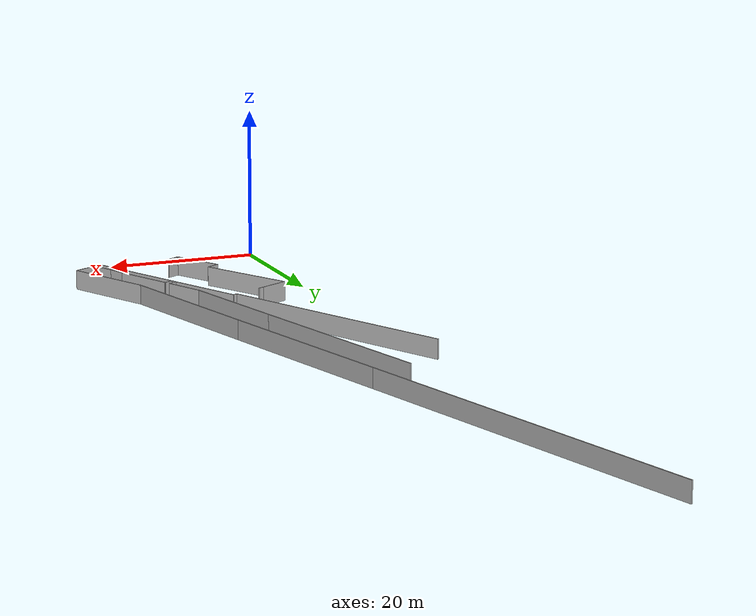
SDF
<?xml version="1.0" ?>
<sdf version="1.6">
  <model name="sps_0401">
    <pose frame="">0 0 0 0 -0 0</pose>
    <static>1</static>
    <self_collide>0</self_collide>
    <allow_auto_disable>0</allow_auto_disable>
    <link name="Wall89">
      <kinematic>0</kinematic>
      <gravity>1</gravity>
      <self_collide>0</self_collide>
      <collision name="collision">
        <geometry>
          <box>
            <size>26.7984 0.15 2.5</size>
          </box>
        </geometry>
        <pose frame="">0 0 0 0 -0 0</pose>
      </collision>
      <visual name="visual">
        <geometry>
          <box>
            <size>26.7984 0.15 2.5</size>
          </box>
        </geometry>
        <pose frame="">0 0 0 0 -0 0</pose>
        <cast_shadows>1</cast_shadows>
        <transparency>0.0</transparency>
      </visual>
      <pose frame="">13.3971 54.9457 1.25 0 -0 1.83122</pose>
    </link>
    <link name="Wall90">
      <kinematic>0</kinematic>
      <gravity>1</gravity>
      <self_collide>0</self_collide>
      <collision name="collision">
        <geometry>
          <box>
            <size>51.7448 0.15 2.5</size>
          </box>
        </geometry>
        <pose frame="">0 0 0 0 -0 0</pose>
      </collision>
      <visual name="visual">
        <geometry>
          <box>
            <size>51.7448 0.15 2.5</size>
          </box>
        </geometry>
        <pose frame="">0 0 0 0 -0 0</pose>
        <cast_shadows>1</cast_shadows>
        <transparency>0.0</transparency>
      </visual>
      <pose frame="">3.28492 92.8931 1.25 0 -0 1.83122</pose>
    </link>
    <link name="Wall495">
      <kinematic>0</kinematic>
      <gravity>1</gravity>
      <self_collide>0</self_collide>
      <collision name="collision">
        <geometry>
          <box>
            <size>27.9987 0.15 2.5</size>
          </box>
        </geometry>
        <pose frame="">0 0 0 0 -0 0</pose>
      </collision>
      <visual name="visual">
        <geometry>
          <box>
            <size>27.9987 0.15 2.5</size>
          </box>
        </geometry>
        <pose frame="">0 0 0 0 -0 0</pose>
        <cast_shadows>1</cast_shadows>
        <transparency>0.0</transparency>
      </visual>
      <pose frame="">8.89472 54.3658 1.25 0 -0 1.83122</pose>
    </link>
    <link name="Wall1098">
      <kinematic>0</kinematic>
      <gravity>1</gravity>
      <self_collide>0</self_collide>
      <collision name="collision">
        <geometry>
          <box>
            <size>1.8 0.15 2.5</size>
          </box>
        </geometry>
        <pose frame="">0 0 0 0 -0 0</pose>
      </collision>
      <visual name="visual">
        <geometry>
          <box>
            <size>1.8 0.15 2.5</size>
          </box>
        </geometry>
        <pose frame="">0 0 0 0 -0 0</pose>
        <cast_shadows>1</cast_shadows>
        <transparency>0.0</transparency>
      </visual>
      <pose frame="">13.7952 7.87309 1.25 0 0 -2.62645</pose>
    </link>
    <link name="Wall1099">
      <kinematic>0</kinematic>
      <gravity>1</gravity>
      <self_collide>0</self_collide>
      <collision name="collision">
        <geometry>
          <box>
            <size>7.00014 0.15 2.5</size>
          </box>
        </geometry>
        <pose frame="">0 0 0 0 -0 0</pose>
      </collision>
      <visual name="visual">
        <geometry>
          <box>
            <size>7.00014 0.15 2.5</size>
          </box>
        </geometry>
        <pose frame="">0 0 0 0 -0 0</pose>
        <cast_shadows>1</cast_shadows>
        <transparency>0.0</transparency>
      </visual>
      <pose frame="">11.2877 10.4755 1.25 0 -0 2.08596</pose>
    </link>
    <link name="Wall1100">
      <kinematic>0</kinematic>
      <gravity>1</gravity>
      <self_collide>0</self_collide>
      <collision name="collision">
        <geometry>
          <box>
            <size>1.80131 0.15 2.5</size>
          </box>
        </geometry>
        <pose frame="">0 0 0 0 -0 0</pose>
      </collision>
      <visual name="visual">
        <geometry>
          <box>
            <size>1.80131 0.15 2.5</size>
          </box>
        </geometry>
        <pose frame="">0 0 0 0 -0 0</pose>
        <cast_shadows>1</cast_shadows>
        <transparency>0.0</transparency>
      </visual>
      <pose frame="">10.3472 13.9648 1.25 0 -0 0.514842</pose>
    </link>
    <link name="Wall1101">
      <kinematic>0</kinematic>
      <gravity>1</gravity>
      <self_collide>0</self_collide>
      <collision name="collision">
        <geometry>
          <box>
            <size>12.9596 0.15 2.5</size>
          </box>
        </geometry>
        <pose frame="">0 0 0 0 -0 0</pose>
      </collision>
      <visual name="visual">
        <geometry>
          <box>
            <size>12.9596 0.15 2.5</size>
          </box>
        </geometry>
        <pose frame="">0 0 0 0 -0 0</pose>
        <cast_shadows>1</cast_shadows>
        <transparency>0.0</transparency>
      </visual>
      <pose frame="">7.93886 20.0472 1.25 0 -0 2.08592</pose>
    </link>
    <link name="Wall1102">
      <kinematic>0</kinematic>
      <gravity>1</gravity>
      <self_collide>0</self_collide>
      <collision name="collision">
        <geometry>
          <box>
            <size>4.00494 0.15 2.5</size>
          </box>
        </geometry>
        <pose frame="">0 0 0 0 -0 0</pose>
      </collision>
      <visual name="visual">
        <geometry>
          <box>
            <size>4.00494 0.15 2.5</size>
          </box>
        </geometry>
        <pose frame="">0 0 0 0 -0 0</pose>
        <cast_shadows>1</cast_shadows>
        <transparency>0.0</transparency>
      </visual>
      <pose frame="">6.53695 26.5832 1.25 0 -0 0.46452</pose>
    </link>
    <link name="Wall1103">
      <kinematic>0</kinematic>
      <gravity>1</gravity>
      <self_collide>0</self_collide>
      <collision name="collision">
        <geometry>
          <box>
            <size>0.753663 0.15 2.5</size>
          </box>
        </geometry>
        <pose frame="">0 0 0 0 -0 0</pose>
      </collision>
      <visual name="visual">
        <geometry>
          <box>
            <size>0.753663 0.15 2.5</size>
          </box>
        </geometry>
        <pose frame="">0 0 0 0 -0 0</pose>
        <cast_shadows>1</cast_shadows>
        <transparency>0.0</transparency>
      </visual>
      <pose frame="">8.66415 27.6491 1.25 0 -0 0.464444</pose>
    </link>
    <link name="Wall1115">
      <kinematic>0</kinematic>
      <gravity>1</gravity>
      <self_collide>0</self_collide>
      <collision name="collision">
        <geometry>
          <box>
            <size>32.9903 0.15 2.5</size>
          </box>
        </geometry>
        <pose frame="">0 0 0 0 -0 0</pose>
      </collision>
      <visual name="visual">
        <geometry>
          <box>
            <size>32.9903 0.15 2.5</size>
          </box>
        </geometry>
        <pose frame="">0 0 0 0 -0 0</pose>
        <cast_shadows>1</cast_shadows>
        <transparency>0.0</transparency>
      </visual>
      <pose frame="">5.31347 44.3861 1.25 0 0 -1.1139</pose>
    </link>
    <link name="Wall1116">
      <kinematic>0</kinematic>
      <gravity>1</gravity>
      <self_collide>0</self_collide>
      <collision name="collision">
        <geometry>
          <box>
            <size>0.60945 0.15 2.5</size>
          </box>
        </geometry>
        <pose frame="">0 0 0 0 -0 0</pose>
      </collision>
      <visual name="visual">
        <geometry>
          <box>
            <size>0.60945 0.15 2.5</size>
          </box>
        </geometry>
        <pose frame="">0 0 0 0 -0 0</pose>
        <cast_shadows>1</cast_shadows>
        <transparency>0.0</transparency>
      </visual>
      <pose frame="">12.8641 29.7171 1.25 0 -0 0.455989</pose>
    </link>
    <link name="Wall1117">
      <kinematic>0</kinematic>
      <gravity>1</gravity>
      <self_collide>0</self_collide>
      <collision name="collision">
        <geometry>
          <box>
            <size>11.0076 0.15 2.5</size>
          </box>
        </geometry>
        <pose frame="">0 0 0 0 -0 0</pose>
      </collision>
      <visual name="visual">
        <geometry>
          <box>
            <size>11.0076 0.15 2.5</size>
          </box>
        </geometry>
        <pose frame="">0 0 0 0 -0 0</pose>
        <cast_shadows>1</cast_shadows>
        <transparency>0.0</transparency>
      </visual>
      <pose frame="">15.5651 24.9117 1.25 0 0 -1.11404</pose>
    </link>
    <link name="Wall1118">
      <kinematic>0</kinematic>
      <gravity>1</gravity>
      <self_collide>0</self_collide>
      <collision name="collision">
        <geometry>
          <box>
            <size>13.9614 0.15 2.5</size>
          </box>
        </geometry>
        <pose frame="">0 0 0 0 -0 0</pose>
      </collision>
      <visual name="visual">
        <geometry>
          <box>
            <size>13.9614 0.15 2.5</size>
          </box>
        </geometry>
        <pose frame="">0 0 0 0 -0 0</pose>
        <cast_shadows>1</cast_shadows>
        <transparency>0.0</transparency>
      </visual>
      <pose frame="">21.0687 13.7058 1.25 0 0 -1.11445</pose>
    </link>
    <link name="Wall1882">
      <kinematic>0</kinematic>
      <gravity>1</gravity>
      <self_collide>0</self_collide>
      <collision name="collision">
        <geometry>
          <box>
            <size>21.9845 0.15 2.5</size>
          </box>
        </geometry>
        <pose frame="">0 0 0 0 -0 0</pose>
      </collision>
      <visual name="visual">
        <geometry>
          <box>
            <size>21.9845 0.15 2.5</size>
          </box>
        </geometry>
        <pose frame="">0 0 0 0 -0 0</pose>
        <cast_shadows>1</cast_shadows>
        <transparency>0.0</transparency>
      </visual>
      <pose frame="">19.6295 31.364 1.25 0 0 -1.3149</pose>
    </link>
    <link name="Wall1883">
      <kinematic>0</kinematic>
      <gravity>1</gravity>
      <self_collide>0</self_collide>
      <collision name="collision">
        <geometry>
          <box>
            <size>12.0086 0.15 2.5</size>
          </box>
        </geometry>
        <pose frame="">0 0 0 0 -0 0</pose>
      </collision>
      <visual name="visual">
        <geometry>
          <box>
            <size>12.0086 0.15 2.5</size>
          </box>
        </geometry>
        <pose frame="">0 0 0 0 -0 0</pose>
        <cast_shadows>1</cast_shadows>
        <transparency>0.0</transparency>
      </visual>
      <pose frame="">25.0586 15.3403 1.25 0 0 -1.11428</pose>
    </link>
    <link name="Wall1884">
      <kinematic>0</kinematic>
      <gravity>1</gravity>
      <self_collide>0</self_collide>
      <collision name="collision">
        <geometry>
          <box>
            <size>3.25016 0.15 2.5</size>
          </box>
        </geometry>
        <pose frame="">0 0 0 0 -0 0</pose>
      </collision>
      <visual name="visual">
        <geometry>
          <box>
            <size>3.25016 0.15 2.5</size>
          </box>
        </geometry>
        <pose frame="">0 0 0 0 -0 0</pose>
        <cast_shadows>1</cast_shadows>
        <transparency>0.0</transparency>
      </visual>
      <pose frame="">26.247 9.23418 1.25 0 0 -2.68485</pose>
    </link>
    <link name="Wall1885">
      <kinematic>0</kinematic>
      <gravity>1</gravity>
      <self_collide>0</self_collide>
      <collision name="collision">
        <geometry>
          <box>
            <size>3.06222 0.15 2.5</size>
          </box>
        </geometry>
        <pose frame="">0 0 0 0 -0 0</pose>
      </collision>
      <visual name="visual">
        <geometry>
          <box>
            <size>3.06222 0.15 2.5</size>
          </box>
        </geometry>
        <pose frame="">0 0 0 0 -0 0</pose>
        <cast_shadows>1</cast_shadows>
        <transparency>0.0</transparency>
      </visual>
      <pose frame="">24.1113 9.89067 1.25 0 -0 2.02896</pose>
    </link>
    <link name="Wall1886">
      <kinematic>0</kinematic>
      <gravity>1</gravity>
      <self_collide>0</self_collide>
      <collision name="collision">
        <geometry>
          <box>
            <size>2.2882 0.15 2.5</size>
          </box>
        </geometry>
        <pose frame="">0 0 0 0 -0 0</pose>
      </collision>
      <visual name="visual">
        <geometry>
          <box>
            <size>2.2882 0.15 2.5</size>
          </box>
        </geometry>
        <pose frame="">0 0 0 0 -0 0</pose>
        <cast_shadows>1</cast_shadows>
        <transparency>0.0</transparency>
      </visual>
      <pose frame="">22.9969 12.3212 1.25 0 -0 1.96281</pose>
    </link>
    <link name="Wall1887">
      <kinematic>0</kinematic>
      <gravity>1</gravity>
      <self_collide>0</self_collide>
      <collision name="collision">
        <geometry>
          <box>
            <size>7.89212 0.15 2.5</size>
          </box>
        </geometry>
        <pose frame="">0 0 0 0 -0 0</pose>
      </collision>
      <visual name="visual">
        <geometry>
          <box>
            <size>7.89212 0.15 2.5</size>
          </box>
        </geometry>
        <pose frame="">0 0 0 0 -0 0</pose>
        <cast_shadows>1</cast_shadows>
        <transparency>0.0</transparency>
      </visual>
      <pose frame="">20.8224 16.9215 1.25 0 -0 2.02671</pose>
    </link>
    <link name="Wall1888">
      <kinematic>0</kinematic>
      <gravity>1</gravity>
      <self_collide>0</self_collide>
      <collision name="collision">
        <geometry>
          <box>
            <size>1.20028 0.15 2.5</size>
          </box>
        </geometry>
        <pose frame="">0 0 0 0 -0 0</pose>
      </collision>
      <visual name="visual">
        <geometry>
          <box>
            <size>1.20028 0.15 2.5</size>
          </box>
        </geometry>
        <pose frame="">0 0 0 0 -0 0</pose>
        <cast_shadows>1</cast_shadows>
        <transparency>0.0</transparency>
      </visual>
      <pose frame="">18.5464 20.1998 1.25 0 0 -2.68479</pose>
    </link>
    <link name="Wall1889">
      <kinematic>0</kinematic>
      <gravity>1</gravity>
      <self_collide>0</self_collide>
      <collision name="collision">
        <geometry>
          <box>
            <size>0.800168 0.15 2.5</size>
          </box>
        </geometry>
        <pose frame="">0 0 0 0 -0 0</pose>
      </collision>
      <visual name="visual">
        <geometry>
          <box>
            <size>0.800168 0.15 2.5</size>
          </box>
        </geometry>
        <pose frame="">0 0 0 0 -0 0</pose>
        <cast_shadows>1</cast_shadows>
        <transparency>0.0</transparency>
      </visual>
      <pose frame="">17.8314 20.2942 1.25 0 -0 2.02738</pose>
    </link>
    <link name="Wall1890">
      <kinematic>0</kinematic>
      <gravity>1</gravity>
      <self_collide>0</self_collide>
      <collision name="collision">
        <geometry>
          <box>
            <size>1.2002 0.15 2.5</size>
          </box>
        </geometry>
        <pose frame="">0 0 0 0 -0 0</pose>
      </collision>
      <visual name="visual">
        <geometry>
          <box>
            <size>1.2002 0.15 2.5</size>
          </box>
        </geometry>
        <pose frame="">0 0 0 0 -0 0</pose>
        <cast_shadows>1</cast_shadows>
        <transparency>0.0</transparency>
      </visual>
      <pose frame="">18.1937 20.9179 1.25 0 -0 0.456666</pose>
    </link>
    <link name="Wall1891">
      <kinematic>0</kinematic>
      <gravity>1</gravity>
      <self_collide>0</self_collide>
      <collision name="collision">
        <geometry>
          <box>
            <size>5.40236 0.15 2.5</size>
          </box>
        </geometry>
        <pose frame="">0 0 0 0 -0 0</pose>
      </collision>
      <visual name="visual">
        <geometry>
          <box>
            <size>5.40236 0.15 2.5</size>
          </box>
        </geometry>
        <pose frame="">0 0 0 0 -0 0</pose>
        <cast_shadows>1</cast_shadows>
        <transparency>0.0</transparency>
      </visual>
      <pose frame="">17.5624 23.6172 1.25 0 -0 2.01873</pose>
    </link>
    <link name="Wall1892">
      <kinematic>0</kinematic>
      <gravity>1</gravity>
      <self_collide>0</self_collide>
      <collision name="collision">
        <geometry>
          <box>
            <size>15.2905 0.15 2.5</size>
          </box>
        </geometry>
        <pose frame="">0 0 0 0 -0 0</pose>
      </collision>
      <visual name="visual">
        <geometry>
          <box>
            <size>15.2905 0.15 2.5</size>
          </box>
        </geometry>
        <pose frame="">0 0 0 0 -0 0</pose>
        <cast_shadows>1</cast_shadows>
        <transparency>0.0</transparency>
      </visual>
      <pose frame="">14.446 33.4452 1.25 0 -0 1.82823</pose>
    </link>
  </model>
</sdf>
